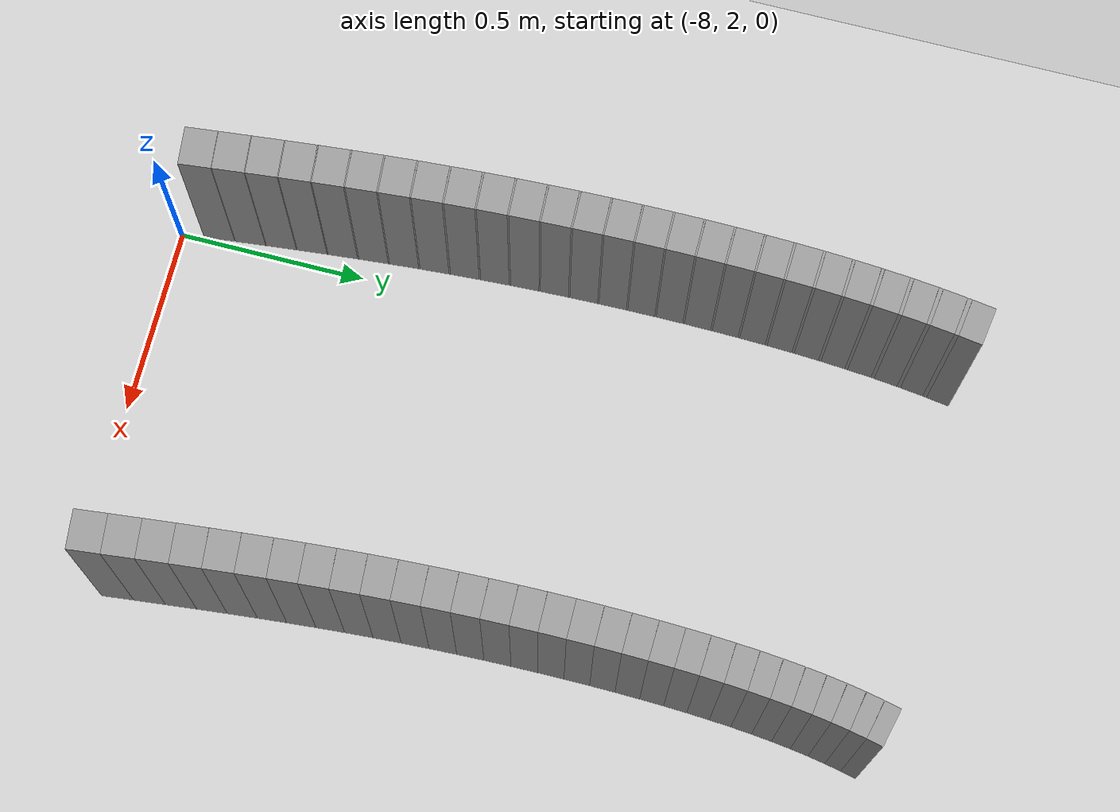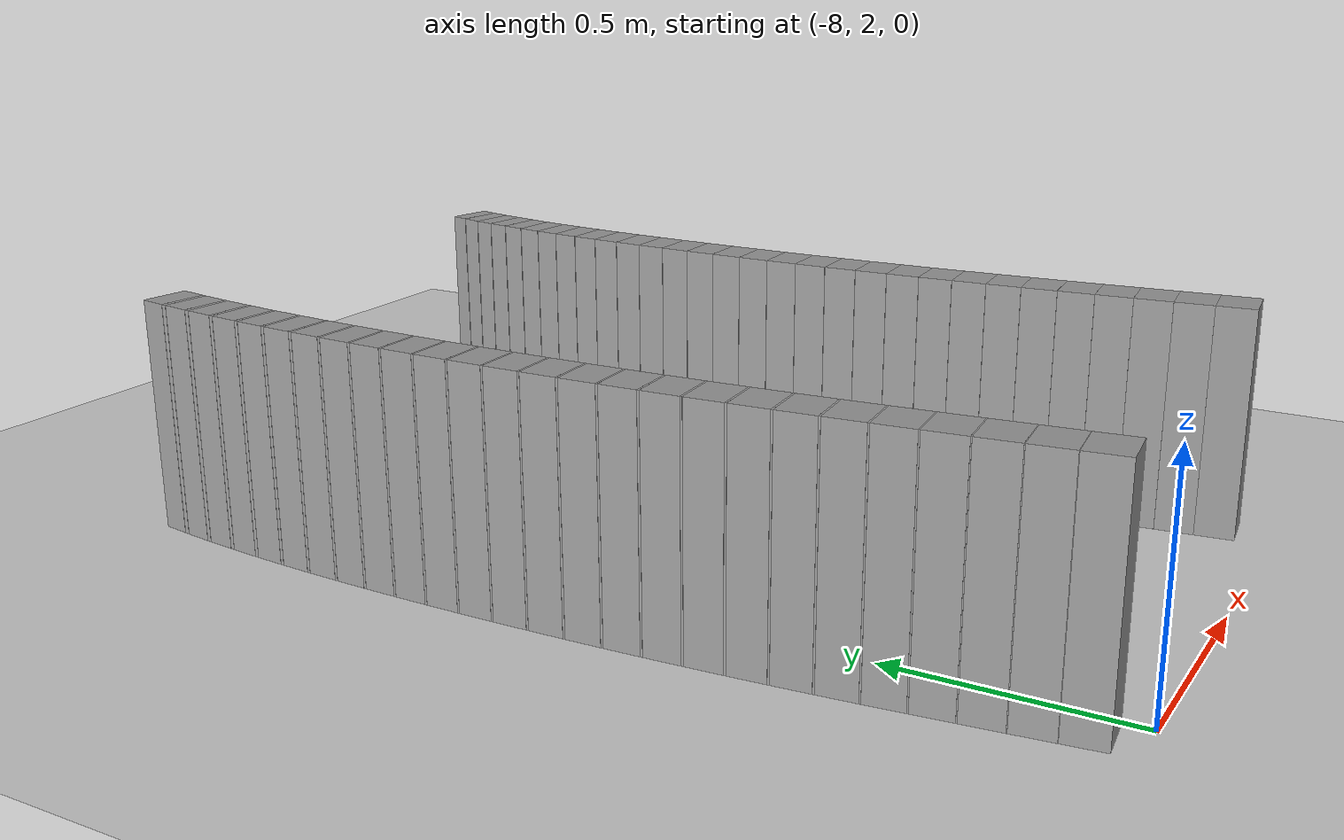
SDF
<sdf version="1.6">
 <world name="default">
  <include><uri>model://ground_plane</uri></include>
  <include><uri>model://sun</uri></include>
  <model name="wall_599_outward">
   <static>true</static>
   <link name="link">
    <collision name="collision">
     <geometry><box><size>0.0835375165786381 0.1 0.5</size></box></geometry>
    </collision>
    <visual name="visual">
     <geometry><box><size>0.0835375165786381 0.1 0.5</size></box></geometry>
     <material>
      <script><uri>file://media/materials/scripts/gazebo.material</uri><name>Gazebo/Gray</name></script>
     </material>
    </visual>
   </link>
   <pose>-8.062676696094199 2.0930131505722835 0.25 0 0 1.6813180871982458</pose>
  </model>
  <model name="wall_600_outward">
   <static>true</static>
   <link name="link">
    <collision name="collision">
     <geometry><box><size>0.0010738495058587288 0.1 0.5</size></box></geometry>
    </collision>
    <visual name="visual">
     <geometry><box><size>0.0010738495058587288 0.1 0.5</size></box></geometry>
     <material>
      <script><uri>file://media/materials/scripts/gazebo.material</uri><name>Gazebo/Gray</name></script>
     </material>
    </visual>
   </link>
   <pose>-8.067342307453927 2.135060776692735 0.25 0 0 1.6802424852401703</pose>
  </model>
  <model name="wall_601_outward">
   <static>true</static>
   <link name="link">
    <collision name="collision">
     <geometry><box><size>0.08229169716051109 0.1 0.5</size></box></geometry>
    </collision>
    <visual name="visual">
     <geometry><box><size>0.08229169716051109 0.1 0.5</size></box></geometry>
     <material>
      <script><uri>file://media/materials/scripts/gazebo.material</uri><name>Gazebo/Gray</name></script>
     </material>
    </visual>
   </link>
   <pose>-8.071851301985774 2.1764989539642046 0.25 0 0 1.679168635527637</pose>
  </model>
  <model name="wall_602_outward">
   <static>true</static>
   <link name="link">
    <collision name="collision">
     <geometry><box><size>0.0017571041007203175 0.1 0.5</size></box></geometry>
    </collision>
    <visual name="visual">
     <geometry><box><size>0.0017571041007203175 0.1 0.5</size></box></geometry>
     <material>
      <script><uri>file://media/materials/scripts/gazebo.material</uri><name>Gazebo/Gray</name></script>
     </material>
    </visual>
   </link>
   <pose>-8.07639513907116 2.2182769826551043 0.25 0 0 1.6774115305231387</pose>
  </model>
  <model name="wall_603_outward">
   <static>true</static>
   <link name="link">
    <collision name="collision">
     <geometry><box><size>0.08149942243924091 0.1 0.5</size></box></geometry>
    </collision>
    <visual name="visual">
     <geometry><box><size>0.08149942243924091 0.1 0.5</size></box></geometry>
     <material>
      <script><uri>file://media/materials/scripts/gazebo.material</uri><name>Gazebo/Gray</name></script>
     </material>
    </visual>
   </link>
   <pose>-8.080753739959661 2.259676436644713 0.25 0 0 1.6756544255179013</pose>
  </model>
  <model name="wall_604_outward">
   <static>true</static>
   <link name="link">
    <collision name="collision">
     <geometry><box><size>0.0023992827453067976 0.1 0.5</size></box></geometry>
    </collision>
    <visual name="visual">
     <geometry><box><size>0.0023992827453067976 0.1 0.5</size></box></geometry>
     <material>
      <script><uri>file://media/materials/scripts/gazebo.material</uri><name>Gazebo/Gray</name></script>
     </material>
    </visual>
   </link>
   <pose>-8.085141550080968 2.301395677096096 0.25 0 0 1.6732551404706104</pose>
  </model>
  <model name="wall_605_outward">
   <static>true</static>
   <link name="link">
    <collision name="collision">
     <geometry><box><size>0.08077661572985065 0.1 0.5</size></box></geometry>
    </collision>
    <visual name="visual">
     <geometry><box><size>0.08077661572985065 0.1 0.5</size></box></geometry>
     <material>
      <script><uri>file://media/materials/scripts/gazebo.material</uri><name>Gazebo/Gray</name></script>
     </material>
    </visual>
   </link>
   <pose>-8.089298743980265 2.3427753216300564 0.25 0 0 1.6708558554233954</pose>
  </model>
  <model name="wall_606_outward">
   <static>true</static>
   <link name="link">
    <collision name="collision">
     <geometry><box><size>0.002972800998345702 0.1 0.5</size></box></geometry>
    </collision>
    <visual name="visual">
     <geometry><box><size>0.002972800998345702 0.1 0.5</size></box></geometry>
     <material>
      <script><uri>file://media/materials/scripts/gazebo.material</uri><name>Gazebo/Gray</name></script>
     </material>
    </visual>
   </link>
   <pose>-8.093477322143293 2.384441016806861 0.25 0 0 1.667883050046415</pose>
  </model>
  <model name="wall_607_outward">
   <static>true</static>
   <link name="link">
    <collision name="collision">
     <geometry><box><size>0.08011619725594968 0.1 0.5</size></box></geometry>
    </collision>
    <visual name="visual">
     <geometry><box><size>0.08011619725594968 0.1 0.5</size></box></geometry>
     <material>
      <script><uri>file://media/materials/scripts/gazebo.material</uri><name>Gazebo/Gray</name></script>
     </material>
    </visual>
   </link>
   <pose>-8.09738586691163 2.4258012411692826 0.25 0 0 1.6649102446692696</pose>
  </model>
  <model name="wall_608_outward">
   <static>true</static>
   <link name="link">
    <collision name="collision">
     <geometry><box><size>0.003463925628525786 0.1 0.5</size></box></geometry>
    </collision>
    <visual name="visual">
     <geometry><box><size>0.003463925628525786 0.1 0.5</size></box></geometry>
     <material>
      <script><uri>file://media/materials/scripts/gazebo.material</uri><name>Gazebo/Gray</name></script>
     </material>
    </visual>
   </link>
   <pose>-8.101307115992057 2.4674069163654346 0.25 0 0 1.6614463121132155</pose>
  </model>
  <model name="wall_609_outward">
   <static>true</static>
   <link name="link">
    <collision name="collision">
     <geometry><box><size>0.07950730935146735 0.1 0.5</size></box></geometry>
    </collision>
    <visual name="visual">
     <geometry><box><size>0.07950730935146735 0.1 0.5</size></box></geometry>
     <material>
      <script><uri>file://media/materials/scripts/gazebo.material</uri><name>Gazebo/Gray</name></script>
     </material>
    </visual>
   </link>
   <pose>-8.10492547832638 2.508734426409025 0.25 0 0 1.6579823795578483</pose>
  </model>
  <model name="wall_610_outward">
   <static>true</static>
   <link name="link">
    <collision name="collision">
     <geometry><box><size>0.0038500055685019357 0.1 0.5</size></box></geometry>
    </collision>
    <visual name="visual">
     <geometry><box><size>0.0038500055685019357 0.1 0.5</size></box></geometry>
     <material>
      <script><uri>file://media/materials/scripts/gazebo.material</uri><name>Gazebo/Gray</name></script>
     </material>
    </visual>
   </link>
   <pose>-8.10854728967772 2.5502554070801207 0.25 0 0 1.654132364477948</pose>
  </model>
  <model name="wall_611_outward">
   <static>true</static>
   <link name="link">
    <collision name="collision">
     <geometry><box><size>0.07892958576517427 0.1 0.5</size></box></geometry>
    </collision>
    <visual name="visual">
     <geometry><box><size>0.07892958576517427 0.1 0.5</size></box></geometry>
     <material>
      <script><uri>file://media/materials/scripts/gazebo.material</uri><name>Gazebo/Gray</name></script>
     </material>
    </visual>
   </link>
   <pose>-8.111841123453784 2.591513917939432 0.25 0 0 1.6502823493984264</pose>
  </model>
  <model name="wall_612_outward">
   <static>true</static>
   <link name="link">
    <collision name="collision">
     <geometry><box><size>0.004131584092209537 0.1 0.5</size></box></geometry>
    </collision>
    <visual name="visual">
     <geometry><box><size>0.004131584092209537 0.1 0.5</size></box></geometry>
     <material>
      <script><uri>file://media/materials/scripts/gazebo.material</uri><name>Gazebo/Gray</name></script>
     </material>
    </visual>
   </link>
   <pose>-8.115130240043865 2.632914036356189 0.25 0 0 1.6461507535514452</pose>
  </model>
  <model name="wall_613_outward">
   <static>true</static>
   <link name="link">
    <collision name="collision">
     <geometry><box><size>0.07836692986544262 0.1 0.5</size></box></geometry>
    </collision>
    <visual name="visual">
     <geometry><box><size>0.07836692986544262 0.1 0.5</size></box></geometry>
     <material>
      <script><uri>file://media/materials/scripts/gazebo.material</uri><name>Gazebo/Gray</name></script>
     </material>
    </visual>
   </link>
   <pose>-8.118074157795007 2.674058090213893 0.25 0 0 1.6420191577051308</pose>
  </model>
  <model name="wall_614_outward">
   <static>true</static>
   <link name="link">
    <collision name="collision">
     <geometry><box><size>0.004310320914747268 0.1 0.5</size></box></geometry>
    </collision>
    <visual name="visual">
     <geometry><box><size>0.004310320914747268 0.1 0.5</size></box></geometry>
     <material>
      <script><uri>file://media/materials/scripts/gazebo.material</uri><name>Gazebo/Gray</name></script>
     </material>
    </visual>
   </link>
   <pose>-8.121006655830488 2.715292551959914 0.25 0 0 1.6377088234435524</pose>
  </model>
  <model name="wall_615_outward">
   <static>true</static>
   <link name="link">
    <collision name="collision">
     <geometry><box><size>0.07779711726841362 0.1 0.5</size></box></geometry>
    </collision>
    <visual name="visual">
     <geometry><box><size>0.07779711726841362 0.1 0.5</size></box></geometry>
     <material>
      <script><uri>file://media/materials/scripts/gazebo.material</uri><name>Gazebo/Gray</name></script>
     </material>
    </visual>
   </link>
   <pose>-8.123584299047213 2.756265250787 0.25 0 0 1.633398489181777</pose>
  </model>
  <model name="wall_616_outward">
   <static>true</static>
   <link name="link">
    <collision name="collision">
     <geometry><box><size>0.004399380211441832 0.1 0.5</size></box></geometry>
    </collision>
    <visual name="visual">
     <geometry><box><size>0.004399380211441832 0.1 0.5</size></box></geometry>
     <material>
      <script><uri>file://media/materials/scripts/gazebo.material</uri><name>Gazebo/Gray</name></script>
     </material>
    </visual>
   </link>
   <pose>-8.126145798463606 2.797283577351518 0.25 0 0 1.6289990947788602</pose>
  </model>
  <model name="wall_617_outward">
   <static>true</static>
   <link name="link">
    <collision name="collision">
     <geometry><box><size>0.0771978195949293 0.1 0.5</size></box></geometry>
    </collision>
    <visual name="visual">
     <geometry><box><size>0.0771978195949293 0.1 0.5</size></box></geometry>
     <material>
      <script><uri>file://media/materials/scripts/gazebo.material</uri><name>Gazebo/Gray</name></script>
     </material>
    </visual>
   </link>
   <pose>-8.1283495039891 2.8380225978686955 0.25 0 0 1.6245997003759651</pose>
  </model>
  <model name="wall_618_outward">
   <static>true</static>
   <link name="link">
    <collision name="collision">
     <geometry><box><size>0.004420285068843855 0.1 0.5</size></box></geometry>
    </collision>
    <visual name="visual">
     <geometry><box><size>0.004420285068843855 0.1 0.5</size></box></geometry>
     <material>
      <script><uri>file://media/materials/scripts/gazebo.material</uri><name>Gazebo/Gray</name></script>
     </material>
    </visual>
   </link>
   <pose>-8.130534353010109 2.8787731011800215 0.25 0 0 1.6201794009124229</pose>
  </model>
  <model name="wall_619_outward">
   <static>true</static>
   <link name="link">
    <collision name="collision">
     <geometry><box><size>0.07655115967972816 0.1 0.5</size></box></geometry>
    </collision>
    <visual name="visual">
     <geometry><box><size>0.07655115967972816 0.1 0.5</size></box></geometry>
     <material>
      <script><uri>file://media/materials/scripts/gazebo.material</uri><name>Gazebo/Gray</name></script>
     </material>
    </visual>
   </link>
   <pose>-8.132363848747664 2.919217445761446 0.25 0 0 1.6157591014488364</pose>
  </model>
  <model name="wall_620_outward">
   <static>true</static>
   <link name="link">
    <collision name="collision">
     <geometry><box><size>0.004401589766121634 0.1 0.5</size></box></geometry>
    </collision>
    <visual name="visual">
     <geometry><box><size>0.004401589766121634 0.1 0.5</size></box></geometry>
     <material>
      <script><uri>file://media/materials/scripts/gazebo.material</uri><name>Gazebo/Gray</name></script>
     </material>
    </visual>
   </link>
   <pose>-8.134173487550232 2.959653326932824 0.25 0 0 1.6113574974699085</pose>
  </model>
  <model name="wall_621_outward">
   <static>true</static>
   <link name="link">
    <collision name="collision">
     <geometry><box><size>0.07584186898334522 0.1 0.5</size></box></geometry>
    </collision>
    <visual name="visual">
     <geometry><box><size>0.07584186898334522 0.1 0.5</size></box></geometry>
     <material>
      <script><uri>file://media/materials/scripts/gazebo.material</uri><name>Gazebo/Gray</name></script>
     </material>
    </visual>
   </link>
   <pose>-8.135633635659904 2.9997484577921885 0.25 0 0 1.6069558934908896</pose>
  </model>
  <model name="wall_622_outward">
   <static>true</static>
   <link name="link">
    <collision name="collision">
     <geometry><box><size>0.004369964715531385 0.1 0.5</size></box></geometry>
    </collision>
    <visual name="visual">
     <geometry><box><size>0.004369964715531385 0.1 0.5</size></box></geometry>
     <material>
      <script><uri>file://media/materials/scripts/gazebo.material</uri><name>Gazebo/Gray</name></script>
     </material>
    </visual>
   </link>
   <pose>-8.137073989418393 3.039828482306886 0.25 0 0 1.602585914866879</pose>
  </model>
  <model name="wall_623_outward">
   <static>true</static>
   <link name="link">
    <collision name="collision">
     <geometry><box><size>0.07505885444813884 0.1 0.5</size></box></geometry>
    </collision>
    <visual name="visual">
     <geometry><box><size>0.07505885444813884 0.1 0.5</size></box></geometry>
     <material>
      <script><uri>file://media/materials/scripts/gazebo.material</uri><name>Gazebo/Gray</name></script>
     </material>
    </visual>
   </link>
   <pose>-8.138172350706142 3.079527680850001 0.25 0 0 1.5982159362424442</pose>
  </model>
  <model name="wall_624_outward">
   <static>true</static>
   <link name="link">
    <collision name="collision">
     <geometry><box><size>0.004351567744811568 0.1 0.5</size></box></geometry>
    </collision>
    <visual name="visual">
     <geometry><box><size>0.004351567744811568 0.1 0.5</size></box></geometry>
     <material>
      <script><uri>file://media/materials/scripts/gazebo.material</uri><name>Gazebo/Gray</name></script>
     </material>
    </visual>
   </link>
   <pose>-8.139251450595218 3.11921820598371 0.25 0 0 1.5938643547634936</pose>
  </model>
  <model name="wall_625_outward">
   <static>true</static>
   <link name="link">
    <collision name="collision">
     <geometry><box><size>0.07419876165709217 0.1 0.5</size></box></geometry>
    </collision>
    <visual name="visual">
     <geometry><box><size>0.07419876165709217 0.1 0.5</size></box></geometry>
     <material>
      <script><uri>file://media/materials/scripts/gazebo.material</uri><name>Gazebo/Gray</name></script>
     </material>
    </visual>
   </link>
   <pose>-8.139995965223807 3.1584862939396787 0.25 0 0 1.5895127732852858</pose>
  </model>
  <model name="wall_626_outward">
   <static>true</static>
   <link name="link">
    <collision name="collision">
     <geometry><box><size>0.004382227422068347 0.1 0.5</size></box></geometry>
    </collision>
    <visual name="visual">
     <geometry><box><size>0.004382227422068347 0.1 0.5</size></box></geometry>
     <material>
      <script><uri>file://media/materials/scripts/gazebo.material</uri><name>Gazebo/Gray</name></script>
     </material>
    </visual>
   </link>
   <pose>-8.140721700058105 3.1977700655132058 0.25 0 0 1.5851305318373943</pose>
  </model>
  <model name="wall_627_outward">
   <static>true</static>
   <link name="link">
    <collision name="collision">
     <geometry><box><size>0.07326419390893774 0.1 0.5</size></box></geometry>
    </collision>
    <visual name="visual">
     <geometry><box><size>0.07326419390893774 0.1 0.5</size></box></geometry>
     <material>
      <script><uri>file://media/materials/scripts/gazebo.material</uri><name>Gazebo/Gray</name></script>
     </material>
    </visual>
   </link>
   <pose>-8.141117662133269 3.236591237043719 0.25 0 0 1.5807482903889294</pose>
  </model>
  <model name="wall_628_outward">
   <static>true</static>
   <link name="link">
    <collision name="collision">
     <geometry><box><size>0.004480979611964814 0.1 0.5</size></box></geometry>
    </collision>
    <visual name="visual">
     <geometry><box><size>0.004480979611964814 0.1 0.5</size></box></geometry>
     <material>
      <script><uri>file://media/materials/scripts/gazebo.material</uri><name>Gazebo/Gray</name></script>
     </material>
    </visual>
   </link>
   <pose>-8.141494474999867 3.275461976238245 0.25 0 0 1.5762672957809851</pose>
  </model>
  <model name="wall_629_outward">
   <static>true</static>
   <link name="link">
    <collision name="collision">
     <geometry><box><size>0.07226289885713405 0.1 0.5</size></box></geometry>
    </collision>
    <visual name="visual">
     <geometry><box><size>0.07226289885713405 0.1 0.5</size></box></geometry>
     <material>
      <script><uri>file://media/materials/scripts/gazebo.material</uri><name>Gazebo/Gray</name></script>
     </material>
    </visual>
   </link>
   <pose>-8.141542501792307 3.313833864236967 0.25 0 0 1.5717863011732658</pose>
  </model>
  <model name="wall_630_outward">
   <static>true</static>
   <link name="link">
    <collision name="collision">
     <geometry><box><size>0.004676262397299406 0.1 0.5</size></box></geometry>
    </collision>
    <visual name="visual">
     <geometry><box><size>0.004676262397299406 0.1 0.5</size></box></geometry>
     <material>
      <script><uri>file://media/materials/scripts/gazebo.material</uri><name>Gazebo/Gray</name></script>
     </material>
    </visual>
   </link>
   <pose>-8.141569651950299 3.3523034112726515 0.25 0 0 1.5671100217327711</pose>
  </model>
  <model name="wall_631_outward">
   <static>true</static>
   <link name="link">
    <collision name="collision">
     <geometry><box><size>0.07120524846321309 0.1 0.5</size></box></geometry>
    </collision>
    <visual name="visual">
     <geometry><box><size>0.07120524846321309 0.1 0.5</size></box></geometry>
     <material>
      <script><uri>file://media/materials/scripts/gazebo.material</uri><name>Gazebo/Gray</name></script>
     </material>
    </visual>
   </link>
   <pose>-8.141263306421468 3.3902429059279813 0.25 0 0 1.562433742292385</pose>
  </model>
  <model name="wall_632_outward">
   <static>true</static>
   <link name="link">
    <collision name="collision">
     <geometry><box><size>0.004973988709862005 0.1 0.5</size></box></geometry>
    </collision>
    <visual name="visual">
     <geometry><box><size>0.004973988709862005 0.1 0.5</size></box></geometry>
     <material>
      <script><uri>file://media/materials/scripts/gazebo.material</uri><name>Gazebo/Gray</name></script>
     </material>
    </visual>
   </link>
   <pose>-8.140932412887917 3.4283310584548117 0.25 0 0 1.5574597330723492</pose>
  </model>
  <model name="wall_633_outward">
   <static>true</static>
   <link name="link">
    <collision name="collision">
     <geometry><box><size>0.07010521532386947 0.1 0.5</size></box></geometry>
    </collision>
    <visual name="visual">
     <geometry><box><size>0.07010521532386947 0.1 0.5</size></box></geometry>
     <material>
      <script><uri>file://media/materials/scripts/gazebo.material</uri><name>Gazebo/Gray</name></script>
     </material>
    </visual>
   </link>
   <pose>-8.140257447321758 3.4658645632775884 0.25 0 0 1.552485723852442</pose>
  </model>
  <model name="wall_634_outward">
   <static>true</static>
   <link name="link">
    <collision name="collision">
     <geometry><box><size>0.005393218803809813 0.1 0.5</size></box></geometry>
    </collision>
    <visual name="visual">
     <geometry><box><size>0.005393218803809813 0.1 0.5</size></box></geometry>
     <material>
      <script><uri>file://media/materials/scripts/gazebo.material</uri><name>Gazebo/Gray</name></script>
     </material>
    </visual>
   </link>
   <pose>-8.139551734772233 3.5036071467786196 0.25 0 0 1.547092478903286</pose>
  </model>
  <model name="wall_635_outward">
   <static>true</static>
   <link name="link">
    <collision name="collision">
     <geometry><box><size>0.06897768096205444 0.1 0.5</size></box></geometry>
    </collision>
    <visual name="visual">
     <geometry><box><size>0.06897768096205444 0.1 0.5</size></box></geometry>
     <material>
      <script><uri>file://media/materials/scripts/gazebo.material</uri><name>Gazebo/Gray</name></script>
     </material>
    </visual>
   </link>
   <pose>-8.13848443734354 3.540777240321905 0.25 0 0 1.5416992339536295</pose>
  </model>
  <model name="wall_636_outward">
   <static>true</static>
   <link name="link">
    <collision name="collision">
     <geometry><box><size>0.0059281139591822445 0.1 0.5</size></box></geometry>
    </collision>
    <visual name="visual">
     <geometry><box><size>0.0059281139591822445 0.1 0.5</size></box></geometry>
     <material>
      <script><uri>file://media/materials/scripts/gazebo.material</uri><name>Gazebo/Gray</name></script>
     </material>
    </visual>
   </link>
   <pose>-8.137377258361902 3.578213721064018 0.25 0 0 1.5357710852724062</pose>
  </model>
  <model name="wall_637_outward">
   <static>true</static>
   <link name="link">
    <collision name="collision">
     <geometry><box><size>0.06783548995119666 0.1 0.5</size></box></geometry>
    </collision>
    <visual name="visual">
     <geometry><box><size>0.06783548995119666 0.1 0.5</size></box></geometry>
     <material>
      <script><uri>file://media/materials/scripts/gazebo.material</uri><name>Gazebo/Gray</name></script>
     </material>
    </visual>
   </link>
   <pose>-8.13588480437839 3.615065265991114 0.25 0 0 1.529842936591183</pose>
  </model>
  <model name="wall_638_outward">
   <static>true</static>
   <link name="link">
    <collision name="collision">
     <geometry><box><size>0.006580480084064451 0.1 0.5</size></box></geometry>
    </collision>
    <visual name="visual">
     <geometry><box><size>0.006580480084064451 0.1 0.5</size></box></geometry>
     <material>
      <script><uri>file://media/materials/scripts/gazebo.material</uri><name>Gazebo/Gray</name></script>
     </material>
    </visual>
   </link>
   <pose>-8.134339806871157 3.652241095494253 0.25 0 0 1.5232624090139464</pose>
  </model>
  <model name="wall_639_outward">
   <static>true</static>
   <link name="link">
    <collision name="collision">
     <geometry><box><size>0.06668963577628896 0.1 0.5</size></box></geometry>
    </collision>
    <visual name="visual">
     <geometry><box><size>0.06668963577628896 0.1 0.5</size></box></geometry>
     <material>
      <script><uri>file://media/materials/scripts/gazebo.material</uri><name>Gazebo/Gray</name></script>
     </material>
    </visual>
   </link>
   <pose>-8.132379911983698 3.688823625897146 0.25 0 0 1.516681881436978</pose>
  </model>
  <model name="wall_640_outward">
   <static>true</static>
   <link name="link">
    <collision name="collision">
     <geometry><box><size>0.00735574527872967 0.1 0.5</size></box></geometry>
    </collision>
    <visual name="visual">
     <geometry><box><size>0.00735574527872967 0.1 0.5</size></box></geometry>
     <material>
      <script><uri>file://media/materials/scripts/gazebo.material</uri><name>Gazebo/Gray</name></script>
     </material>
    </visual>
   </link>
   <pose>-8.13035041878042 3.7257905588991047 0.25 0 0 1.5093260698238364</pose>
  </model>
  <model name="wall_641_outward">
   <static>true</static>
   <link name="link">
    <collision name="collision">
     <geometry><box><size>0.06554756084513795 0.1 0.5</size></box></geometry>
    </collision>
    <visual name="visual">
     <geometry><box><size>0.06554756084513795 0.1 0.5</size></box></geometry>
     <material>
      <script><uri>file://media/materials/scripts/gazebo.material</uri><name>Gazebo/Gray</name></script>
     </material>
    </visual>
   </link>
   <pose>-8.12787057135165 3.7621576710425306 0.25 0 0 1.5019702582105463</pose>
  </model>
  <model name="wall_642_outward">
   <static>true</static>
   <link name="link">
    <collision name="collision">
     <geometry><box><size>0.008228317698117651 0.1 0.5</size></box></geometry>
    </collision>
    <visual name="visual">
     <geometry><box><size>0.008228317698117651 0.1 0.5</size></box></geometry>
     <material>
      <script><uri>file://media/materials/scripts/gazebo.material</uri><name>Gazebo/Gray</name></script>
     </material>
    </visual>
   </link>
   <pose>-8.125299960594955 3.7989558081523613 0.25 0 0 1.4937418476595703</pose>
  </model>
  <model name="wall_643_outward">
   <static>true</static>
   <link name="link">
    <collision name="collision">
     <geometry><box><size>0.06441499357291332 0.1 0.5</size></box></geometry>
    </collision>
    <visual name="visual">
     <geometry><box><size>0.06441499357291332 0.1 0.5</size></box></geometry>
     <material>
      <script><uri>file://media/materials/scripts/gazebo.material</uri><name>Gazebo/Gray</name></script>
     </material>
    </visual>
   </link>
   <pose>-8.12223983983023 3.8351482017932943 0.25 0 0 1.4855134371086416</pose>
  </model>
  <model name="wall_644_outward">
   <static>true</static>
   <link name="link">
    <collision name="collision">
     <geometry><box><size>0.009196056977555298 0.1 0.5</size></box></geometry>
    </collision>
    <visual name="visual">
     <geometry><box><size>0.009196056977555298 0.1 0.5</size></box></geometry>
     <material>
      <script><uri>file://media/materials/scripts/gazebo.material</uri><name>Gazebo/Gray</name></script>
     </material>
    </visual>
   </link>
   <pose>-8.119062648336449 3.871816166299846 0.25 0 0 1.4763172505117572</pose>
  </model>
  <model name="wall_645_outward">
   <static>true</static>
   <link name="link">
    <collision name="collision">
     <geometry><box><size>0.06329367121296849 0.1 0.5</size></box></geometry>
    </collision>
    <visual name="visual">
     <geometry><box><size>0.06329367121296849 0.1 0.5</size></box></geometry>
     <material>
      <script><uri>file://media/materials/scripts/gazebo.material</uri><name>Gazebo/Gray</name></script>
     </material>
    </visual>
   </link>
   <pose>-8.115353757354928 3.90787059730411 0.25 0 0 1.4671210639145926</pose>
  </model>
  <model name="wall_646_outward">
   <static>true</static>
   <link name="link">
    <collision name="collision">
     <geometry><box><size>0.010254878014666633 0.1 0.5</size></box></geometry>
    </collision>
    <visual name="visual">
     <geometry><box><size>0.010254878014666633 0.1 0.5</size></box></geometry>
     <material>
      <script><uri>file://media/materials/scripts/gazebo.material</uri><name>Gazebo/Gray</name></script>
     </material>
    </visual>
   </link>
   <pose>-8.111495730033774 3.944441703845789 0.25 0 0 1.4568660061532819</pose>
  </model>
  <model name="wall_647_outward">
   <static>true</static>
   <link name="link">
    <collision name="collision">
     <geometry><box><size>0.062186424756774106 0.1 0.5</size></box></geometry>
    </collision>
    <visual name="visual">
     <geometry><box><size>0.062186424756774106 0.1 0.5</size></box></geometry>
     <material>
      <script><uri>file://media/materials/scripts/gazebo.material</uri><name>Gazebo/Gray</name></script>
     </material>
    </visual>
   </link>
   <pose>-8.10706141710681 3.980389661914673 0.25 0 0 1.4466109483919918</pose>
  </model>
  <model name="wall_648_outward">
   <static>true</static>
   <link name="link">
    <collision name="collision">
     <geometry><box><size>0.011385673710931347 0.1 0.5</size></box></geometry>
    </collision>
    <visual name="visual">
     <geometry><box><size>0.011385673710931347 0.1 0.5</size></box></geometry>
     <material>
      <script><uri>file://media/materials/scripts/gazebo.material</uri><name>Gazebo/Gray</name></script>
     </material>
    </visual>
   </link>
   <pose>-8.102440588729355 4.016884023346869 0.25 0 0 1.4352250286723962</pose>
  </model>
  <model name="wall_649_outward">
   <static>true</static>
   <link name="link">
    <collision name="collision">
     <geometry><box><size>0.06109305705714079 0.1 0.5</size></box></geometry>
    </collision>
    <visual name="visual">
     <geometry><box><size>0.06109305705714079 0.1 0.5</size></box></geometry>
     <material>
      <script><uri>file://media/materials/scripts/gazebo.material</uri><name>Gazebo/Gray</name></script>
     </material>
    </visual>
   </link>
   <pose>-8.097198273013126 4.052741898156004 0.25 0 0 1.4238391089529354</pose>
  </model>
  <model name="wall_389_inward">
   <static>true</static>
   <link name="link">
    <collision name="collision">
     <geometry><box><size>0.08389270772830382 0.1 0.5</size></box></geometry>
    </collision>
    <visual name="visual">
     <geometry><box><size>0.08389270772830382 0.1 0.5</size></box></geometry>
     <material>
      <script><uri>file://media/materials/scripts/gazebo.material</uri><name>Gazebo/Gray</name></script>
     </material>
    </visual>
   </link>
   <pose>-7.059575917662446 2.120677879885376 0.25 0 0 1.6820815232842483</pose>
  </model>
  <model name="wall_390_inward">
   <static>true</static>
   <link name="link">
    <collision name="collision">
     <geometry><box><size>0.08242670029596909 0.1 0.5</size></box></geometry>
    </collision>
    <visual name="visual">
     <geometry><box><size>0.08242670029596909 0.1 0.5</size></box></geometry>
     <material>
      <script><uri>file://media/materials/scripts/gazebo.material</uri><name>Gazebo/Gray</name></script>
     </material>
    </visual>
   </link>
   <pose>-7.068779929470535 2.203326664061654 0.25 0 0 1.6813163349521383</pose>
  </model>
  <model name="wall_391_inward">
   <static>true</static>
   <link name="link">
    <collision name="collision">
     <geometry><box><size>0.08087621869095898 0.1 0.5</size></box></geometry>
    </collision>
    <visual name="visual">
     <geometry><box><size>0.08087621869095898 0.1 0.5</size></box></geometry>
     <material>
      <script><uri>file://media/materials/scripts/gazebo.material</uri><name>Gazebo/Gray</name></script>
     </material>
    </visual>
   </link>
   <pose>-7.077699360296709 2.284489444348055 0.25 0 0 1.6791686355276432</pose>
  </model>
  <model name="wall_392_inward">
   <static>true</static>
   <link name="link">
    <collision name="collision">
     <geometry><box><size>0.07942122420728334 0.1 0.5</size></box></geometry>
    </collision>
    <visual name="visual">
     <geometry><box><size>0.07942122420728334 0.1 0.5</size></box></geometry>
     <material>
      <script><uri>file://media/materials/scripts/gazebo.material</uri><name>Gazebo/Gray</name></script>
     </material>
    </visual>
   </link>
   <pose>-7.086229511267709 2.3641828207540354 0.25 0 0 1.6756544255179058</pose>
  </model>
  <model name="wall_393_inward">
   <static>true</static>
   <link name="link">
    <collision name="collision">
     <geometry><box><size>0.07809056383708317 0.1 0.5</size></box></geometry>
    </collision>
    <visual name="visual">
     <geometry><box><size>0.07809056383708317 0.1 0.5</size></box></geometry>
     <material>
      <script><uri>file://media/materials/scripts/gazebo.material</uri><name>Gazebo/Gray</name></script>
     </material>
    </visual>
   </link>
   <pose>-7.0942862006917995 2.4425253053732314 0.25 0 0 1.670855855423402</pose>
  </model>
  <model name="wall_394_inward">
   <static>true</static>
   <link name="link">
    <collision name="collision">
     <geometry><box><size>0.07689781698339283 0.1 0.5</size></box></geometry>
    </collision>
    <visual name="visual">
     <geometry><box><size>0.07689781698339283 0.1 0.5</size></box></geometry>
     <material>
      <script><uri>file://media/materials/scripts/gazebo.material</uri><name>Gazebo/Gray</name></script>
     </material>
    </visual>
   </link>
   <pose>-7.101799775181961 2.5196540462958645 0.25 0 0 1.664910244669266</pose>
  </model>
  <model name="wall_395_inward">
   <static>true</static>
   <link name="link">
    <collision name="collision">
     <geometry><box><size>0.0758503190954403 0.1 0.5</size></box></geometry>
    </collision>
    <visual name="visual">
     <geometry><box><size>0.0758503190954403 0.1 0.5</size></box></geometry>
     <material>
      <script><uri>file://media/materials/scripts/gazebo.material</uri><name>Gazebo/Gray</name></script>
     </material>
    </visual>
   </link>
   <pose>-7.108715370568076 2.595713909717836 0.25 0 0 1.6579823795578374</pose>
  </model>
  <model name="wall_396_inward">
   <static>true</static>
   <link name="link">
    <collision name="collision">
     <geometry><box><size>0.07493875903605199 0.1 0.5</size></box></geometry>
    </collision>
    <visual name="visual">
     <geometry><box><size>0.07493875903605199 0.1 0.5</size></box></geometry>
     <material>
      <script><uri>file://media/materials/scripts/gazebo.material</uri><name>Gazebo/Gray</name></script>
     </material>
    </visual>
   </link>
   <pose>-7.114992884837852 2.6708460937822336 0.25 0 0 1.6502823493984133</pose>
  </model>
  <model name="wall_397_inward">
   <static>true</static>
   <link name="link">
    <collision name="collision">
     <geometry><box><size>0.07414593970982238 0.1 0.5</size></box></geometry>
    </collision>
    <visual name="visual">
     <geometry><box><size>0.07414593970982238 0.1 0.5</size></box></geometry>
     <material>
      <script><uri>file://media/materials/scripts/gazebo.material</uri><name>Gazebo/Gray</name></script>
     </material>
    </visual>
   </link>
   <pose>-7.1206062516920685 2.7451761490414635 0.25 0 0 1.6420191577051215</pose>
  </model>
  <model name="wall_398_inward">
   <static>true</static>
   <link name="link">
    <collision name="collision">
     <geometry><box><size>0.07344222539736957 0.1 0.5</size></box></geometry>
    </collision>
    <visual name="visual">
     <geometry><box><size>0.07344222539736957 0.1 0.5</size></box></geometry>
     <material>
      <script><uri>file://media/materials/scripts/gazebo.material</uri><name>Gazebo/Gray</name></script>
     </material>
    </visual>
   </link>
   <pose>-7.125541781592948 2.818804309376827 0.25 0 0 1.6333984891817723</pose>
  </model>
  <model name="wall_399_inward">
   <static>true</static>
   <link name="link">
    <collision name="collision">
     <geometry><box><size>0.07278794407534445 0.1 0.5</size></box></geometry>
    </collision>
    <visual name="visual">
     <geometry><box><size>0.07278794407534445 0.1 0.5</size></box></geometry>
     <material>
      <script><uri>file://media/materials/scripts/gazebo.material</uri><name>Gazebo/Gray</name></script>
     </material>
    </visual>
   </link>
   <pose>-7.12979627530477 2.891794798041423 0.25 0 0 1.6245997003759913</pose>
  </model>
  <model name="wall_400_inward">
   <static>true</static>
   <link name="link">
    <collision name="collision">
     <geometry><box><size>0.07214017935061078 0.1 0.5</size></box></geometry>
    </collision>
    <visual name="visual">
     <geometry><box><size>0.07214017935061078 0.1 0.5</size></box></geometry>
     <material>
      <script><uri>file://media/materials/scripts/gazebo.material</uri><name>Gazebo/Gray</name></script>
     </material>
    </visual>
   </link>
   <pose>-7.133374714100215 2.9641697413444987 0.25 0 0 1.6157591014488302</pose>
  </model>
  <model name="wall_401_inward">
   <static>true</static>
   <link name="link">
    <collision name="collision">
     <geometry><box><size>0.07145604955997889 0.1 0.5</size></box></geometry>
    </collision>
    <visual name="visual">
     <geometry><box><size>0.07145604955997889 0.1 0.5</size></box></geometry>
     <material>
      <script><uri>file://media/materials/scripts/gazebo.material</uri><name>Gazebo/Gray</name></script>
     </material>
    </visual>
   </link>
   <pose>-7.136287607394745 3.035908046467508 0.25 0 0 1.606955893490892</pose>
  </model>
  <model name="wall_402_inward">
   <static>true</static>
   <link name="link">
    <collision name="collision">
     <geometry><box><size>0.07069804675402816 0.1 0.5</size></box></geometry>
    </collision>
    <visual name="visual">
     <geometry><box><size>0.07069804675402816 0.1 0.5</size></box></geometry>
     <material>
      <script><uri>file://media/materials/scripts/gazebo.material</uri><name>Gazebo/Gray</name></script>
     </material>
    </visual>
   </link>
   <pose>-7.138548370742765 3.106948452234761 0.25 0 0 1.5982159362424389</pose>
  </model>
  <model name="wall_403_inward">
   <static>true</static>
   <link name="link">
    <collision name="collision">
     <geometry><box><size>0.06983182243357355 0.1 0.5</size></box></geometry>
    </collision>
    <visual name="visual">
     <geometry><box><size>0.06983182243357355 0.1 0.5</size></box></geometry>
     <material>
      <script><uri>file://media/materials/scripts/gazebo.material</uri><name>Gazebo/Gray</name></script>
     </material>
    </visual>
   </link>
   <pose>-7.140170969339623 3.177193983907851 0.25 0 0 1.5895127732852863</pose>
  </model>
  <model name="wall_404_inward">
   <static>true</static>
   <link name="link">
    <collision name="collision">
     <geometry><box><size>0.06883254685879753 0.1 0.5</size></box></geometry>
    </collision>
    <visual name="visual">
     <geometry><box><size>0.06883254685879753 0.1 0.5</size></box></geometry>
     <material>
      <script><uri>file://media/materials/scripts/gazebo.material</uri><name>Gazebo/Gray</name></script>
     </material>
    </visual>
   </link>
   <pose>-7.141166936816506 3.2465183488100053 0.25 0 0 1.5807482903889343</pose>
  </model>
  <model name="wall_405_inward">
   <static>true</static>
   <link name="link">
    <collision name="collision">
     <geometry><box><size>0.06768422979365782 0.1 0.5</size></box></geometry>
    </collision>
    <visual name="visual">
     <geometry><box><size>0.06768422979365782 0.1 0.5</size></box></geometry>
     <material>
      <script><uri>file://media/materials/scripts/gazebo.material</uri><name>Gazebo/Gray</name></script>
     </material>
    </visual>
   </link>
   <pose>-7.141542943484151 3.3147750162457923 0.25 0 0 1.5717863011732665</pose>
  </model>
  <model name="wall_406_inward">
   <static>true</static>
   <link name="link">
    <collision name="collision">
     <geometry><box><size>0.06638006657927643 0.1 0.5</size></box></geometry>
    </collision>
    <visual name="visual">
     <geometry><box><size>0.06638006657927643 0.1 0.5</size></box></geometry>
     <material>
      <script><uri>file://media/materials/scripts/gazebo.material</uri><name>Gazebo/Gray</name></script>
     </material>
    </visual>
   </link>
   <pose>-7.141298895082327 3.3818059873192494 0.25 0 0 1.5624337422923822</pose>
  </model>
  <model name="wall_407_inward">
   <static>true</static>
   <link name="link">
    <collision name="collision">
     <geometry><box><size>0.06492154158300119 0.1 0.5</size></box></geometry>
    </collision>
    <visual name="visual">
     <geometry><box><size>0.06492154158300119 0.1 0.5</size></box></geometry>
     <material>
      <script><uri>file://media/materials/scripts/gazebo.material</uri><name>Gazebo/Gray</name></script>
     </material>
    </visual>
   </link>
   <pose>-7.140427000787158 3.4474501893288076 0.25 0 0 1.5524857238524388</pose>
  </model>
  <model name="wall_408_inward">
   <static>true</static>
   <link name="link">
    <collision name="collision">
     <geometry><box><size>0.06331692327817083 0.1 0.5</size></box></geometry>
    </collision>
    <visual name="visual">
     <geometry><box><size>0.06331692327817083 0.1 0.5</size></box></geometry>
     <material>
      <script><uri>file://media/materials/scripts/gazebo.material</uri><name>Gazebo/Gray</name></script>
     </material>
    </visual>
   </link>
   <pose>-7.138911618495211 3.511550579490029 0.25 0 0 1.541699233953631</pose>
  </model>
  <model name="wall_409_inward">
   <static>true</static>
   <link name="link">
    <collision name="collision"><geometry><box><size>0.06158106960548 0.1 0.5</size></box></geometry></collision>
    <visual name="visual">
     <geometry><box><size>0.06158106960548 0.1 0.5</size></box></geometry>
     <material>
      <script><uri>file://media/materials/scripts/gazebo.material</uri><name>Gazebo/Gray</name></script>
     </material>
    </visual>
   </link>
   <pose>-7.136729954940386 3.5739603581759654 0.25 0 0 1.5298429365911945</pose>
  </model>
  <model name="wall_410_inward">
   <static>true</static>
   <link name="link">
    <collision name="collision">
     <geometry><box><size>0.05972135235102857 0.1 0.5</size></box></geometry>
    </collision>
    <visual name="visual">
     <geometry><box><size>0.05972135235102857 0.1 0.5</size></box></geometry>
     <material>
      <script><uri>file://media/materials/scripts/gazebo.material</uri><name>Gazebo/Gray</name></script>
     </material>
    </visual>
   </link>
   <pose>-7.133854225217377 3.6345420411921747 0.25 0 0 1.5166818814369745</pose>
  </model>
  <model name="wall_411_inward">
   <static>true</static>
   <link name="link">
    <collision name="collision">
     <geometry><box><size>0.05775529057135068 0.1 0.5</size></box></geometry>
    </collision>
    <visual name="visual">
     <geometry><box><size>0.05775529057135068 0.1 0.5</size></box></geometry>
     <material>
      <script><uri>file://media/materials/scripts/gazebo.material</uri><name>Gazebo/Gray</name></script>
     </material>
    </visual>
   </link>
   <pose>-7.130253153830703 3.693168281612479 0.25 0 0 1.5019702582105414</pose>
  </model>
  <model name="wall_412_inward">
   <static>true</static>
   <link name="link">
    <collision name="collision">
     <geometry><box><size>0.055702472518838385 0.1 0.5</size></box></geometry>
    </collision>
    <visual name="visual">
     <geometry><box><size>0.055702472518838385 0.1 0.5</size></box></geometry>
     <material>
      <script><uri>file://media/materials/scripts/gazebo.material</uri><name>Gazebo/Gray</name></script>
     </material>
    </visual>
   </link>
   <pose>-7.125894832122755 3.749727571017174 0.25 0 0 1.4855134371086622</pose>
  </model>
  <model name="wall_413_inward">
   <static>true</static>
   <link name="link">
    <collision name="collision">
     <geometry><box><size>0.05356773965426362 0.1 0.5</size></box></geometry>
    </collision>
    <visual name="visual">
     <geometry><box><size>0.05356773965426362 0.1 0.5</size></box></geometry>
     <material>
      <script><uri>file://media/materials/scripts/gazebo.material</uri><name>Gazebo/Gray</name></script>
     </material>
    </visual>
   </link>
   <pose>-7.120750623473449 3.804117639939403 0.25 0 0 1.4671210639146073</pose>
  </model>
  <model name="wall_414_inward">
   <static>true</static>
   <link name="link">
    <collision name="collision">
     <geometry><box><size>0.05136551023826855 0.1 0.5</size></box></geometry>
    </collision>
    <visual name="visual">
     <geometry><box><size>0.05136551023826855 0.1 0.5</size></box></geometry>
     <material>
      <script><uri>file://media/materials/scripts/gazebo.material</uri><name>Gazebo/Gray</name></script>
     </material>
    </visual>
   </link>
   <pose>-7.114797539435167 3.8562426643077243 0.25 0 0 1.4466109483919707</pose>
  </model>
  <model name="wall_415_inward">
   <static>true</static>
   <link name="link">
    <collision name="collision">
     <geometry><box><size>0.049118383118097506 0.1 0.5</size></box></geometry>
    </collision>
    <visual name="visual">
     <geometry><box><size>0.049118383118097506 0.1 0.5</size></box></geometry>
     <material>
      <script><uri>file://media/materials/scripts/gazebo.material</uri><name>Gazebo/Gray</name></script>
     </material>
    </visual>
   </link>
   <pose>-7.1080201346430005 3.9060221071129733 0.25 0 0 1.4238391089529032</pose>
  </model>
  <model name="wall_416_inward">
   <static>true</static>
   <link name="link">
    <collision name="collision">
     <geometry><box><size>0.0468500903325739 0.1 0.5</size></box></geometry>
    </collision>
    <visual name="visual">
     <geometry><box><size>0.0468500903325739 0.1 0.5</size></box></geometry>
     <material>
      <script><uri>file://media/materials/scripts/gazebo.material</uri><name>Gazebo/Gray</name></script>
     </material>
    </visual>
   </link>
   <pose>-7.100412802851961 3.9533956476393994 0.25 0 0 1.3987145584525507</pose>
  </model>
  <model name="wall_417_inward">
   <static>true</static>
   <link name="link">
    <collision name="collision">
     <geometry><box><size>0.04458307590487011 0.1 0.5</size></box></geometry>
    </collision>
    <visual name="visual">
     <geometry><box><size>0.04458307590487011 0.1 0.5</size></box></geometry>
     <material>
      <script><uri>file://media/materials/scripts/gazebo.material</uri><name>Gazebo/Gray</name></script>
     </material>
    </visual>
   </link>
   <pose>-7.091981045752034 3.9983235357962617 0.25 0 0 1.3711645949318232</pose>
  </model>
  <model name="wall_418_inward">
   <static>true</static>
   <link name="link">
    <collision name="collision">
     <geometry><box><size>0.042365093460708804 0.1 0.5</size></box></geometry>
    </collision>
    <visual name="visual">
     <geometry><box><size>0.042365093460708804 0.1 0.5</size></box></geometry>
     <material>
      <script><uri>file://media/materials/scripts/gazebo.material</uri><name>Gazebo/Gray</name></script>
     </material>
    </visual>
   </link>
   <pose>-7.082739013278014 4.040798894447949 0.25 0 0 1.3411701855459863</pose>
  </model>
 </world>
</sdf>
